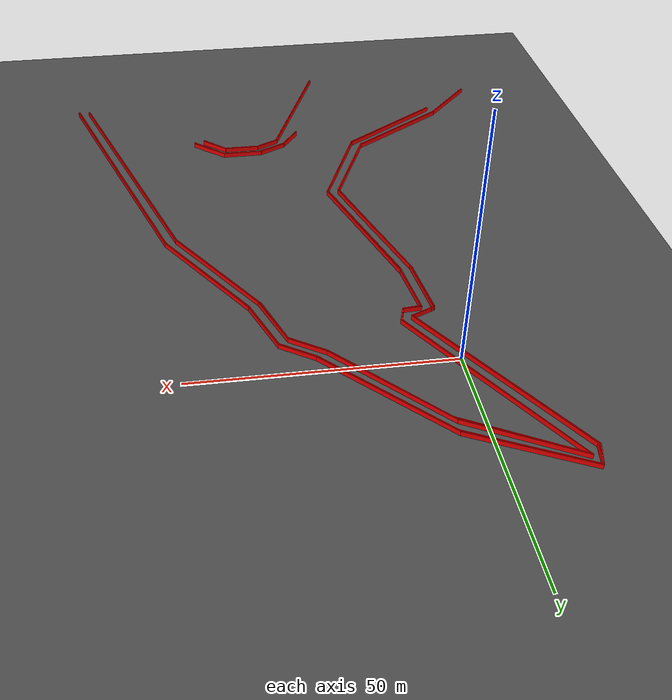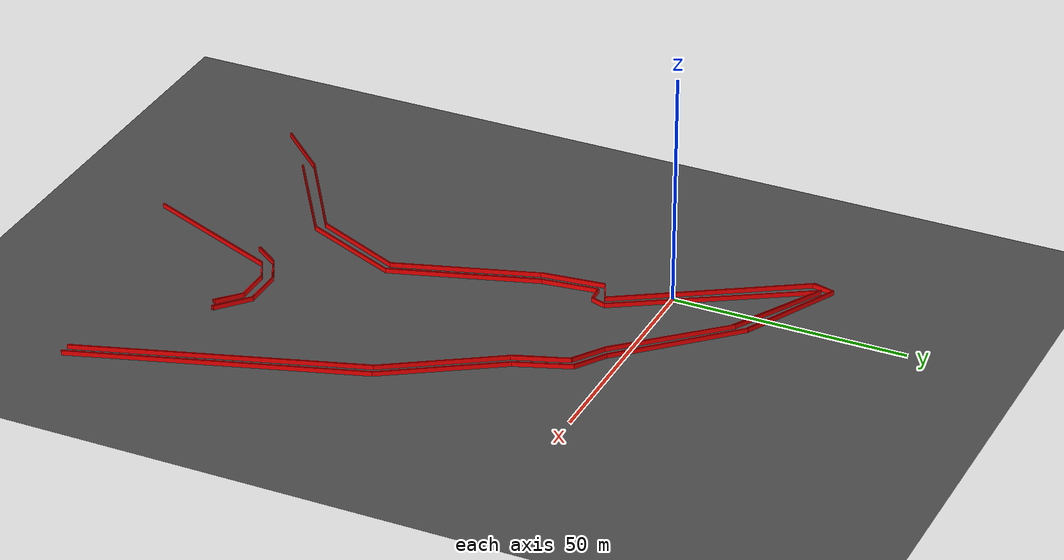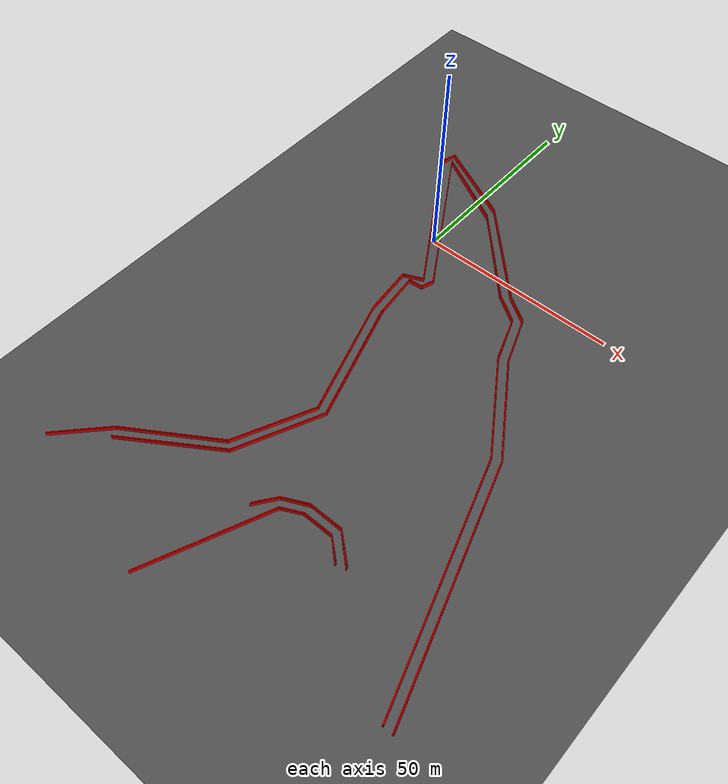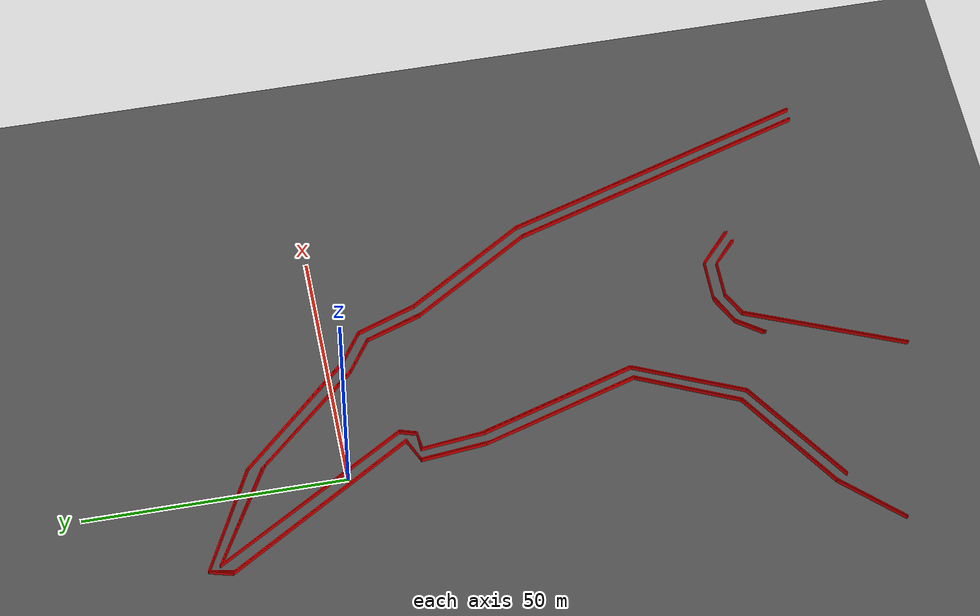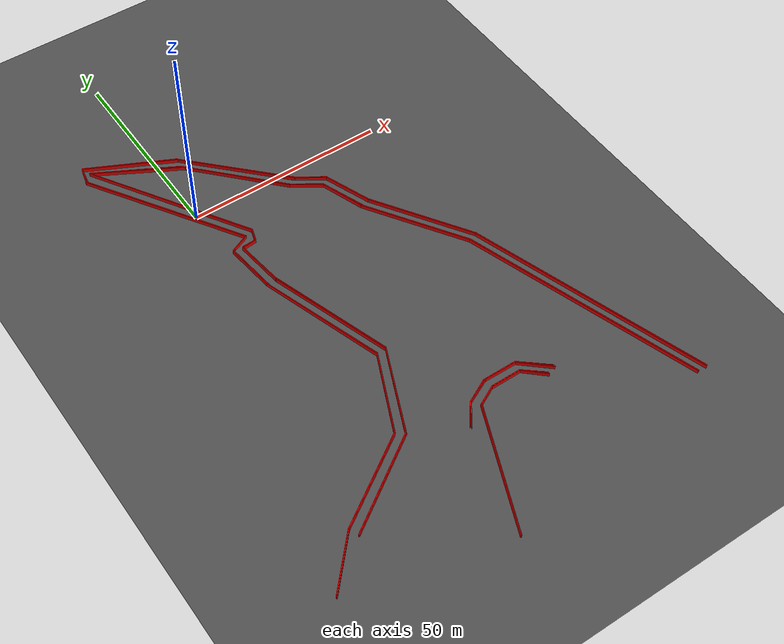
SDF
<sdf version="1.6">
 <world name="track_world">
  <model name="ground_plane">
   <static>true</static>
   <link name="link">
    <collision name="collision">
     <geometry><plane><normal>0 0 1</normal><size>1000 1000</size></plane></geometry>
    </collision>
    <visual name="visual">
     <geometry><plane><normal>0 0 1</normal><size>1000 1000</size></plane></geometry>
     <material><ambient>0.3 0.3 0.3 1</ambient><diffuse>0.3 0.3 0.3 1</diffuse></material>
    </visual>
   </link>
  </model>
  <model name="wall_0">
   <static>true</static>
   <pose>-15.992041944629321 26.23693316114425 0.5 0 0 -1.8352847093441302</pose>
   <link name="link">
    <visual name="visual">
     <geometry><box><size>4.608411176284081 0.15 1.0</size></box></geometry>
     <material><ambient>1 0 0 1</ambient><diffuse>1 0 0 1</diffuse></material>
    </visual>
    <collision name="collision">
     <geometry><box><size>4.608411176284081 0.15 1.0</size></box></geometry>
    </collision>
   </link>
  </model>
  <model name="wall_1">
   <static>true</static>
   <pose>-5.195986944629318 5.942203161144249 0.5 0 0 -1.0080591040338132</pose>
   <link name="link">
    <visual name="visual">
     <geometry><box><size>42.730417360498606 0.15 1.0</size></box></geometry>
     <material><ambient>1 0 0 1</ambient><diffuse>1 0 0 1</diffuse></material>
    </visual>
    <collision name="collision">
     <geometry><box><size>42.730417360498606 0.15 1.0</size></box></geometry>
    </collision>
   </link>
  </model>
  <model name="wall_2">
   <static>true</static>
   <pose>3.839338055370682 -13.19415183885576 0.5 0 0 -2.717923731712275</pose>
   <link name="link">
    <visual name="visual">
     <geometry><box><size>5.184553158855657 0.15 1.0</size></box></geometry>
     <material><ambient>1 0 0 1</ambient><diffuse>1 0 0 1</diffuse></material>
    </visual>
    <collision name="collision">
     <geometry><box><size>5.184553158855657 0.15 1.0</size></box></geometry>
    </collision>
   </link>
  </model>
  <model name="wall_3">
   <static>true</static>
   <pose>2.171278055370678 -20.561416838855763 0.5 0 0 -1.4609462079477658</pose>
   <link name="link">
    <visual name="visual">
     <geometry><box><size>12.679545446777647 0.15 1.0</size></box></geometry>
     <material><ambient>1 0 0 1</ambient><diffuse>1 0 0 1</diffuse></material>
    </visual>
    <collision name="collision">
     <geometry><box><size>12.679545446777647 0.15 1.0</size></box></geometry>
    </collision>
   </link>
  </model>
  <model name="wall_4">
   <static>true</static>
   <pose>7.638808055370681 -42.01452183885576 0.5 0 0 -1.2656494125130227</pose>
   <link name="link">
    <visual name="visual">
     <geometry><box><size>31.770811753057238 0.15 1.0</size></box></geometry>
     <material><ambient>1 0 0 1</ambient><diffuse>1 0 0 1</diffuse></material>
    </visual>
    <collision name="collision">
     <geometry><box><size>31.770811753057238 0.15 1.0</size></box></geometry>
    </collision>
   </link>
  </model>
  <model name="wall_5">
   <static>true</static>
   <pose>8.10215805537068 -66.61840683885575 0.5 0 0 -1.9985312391811392</pose>
   <link name="link">
    <visual name="visual">
     <geometry><box><size>20.776481731960782 0.15 1.0</size></box></geometry>
     <material><ambient>1 0 0 1</ambient><diffuse>1 0 0 1</diffuse></material>
    </visual>
    <collision name="collision">
     <geometry><box><size>20.776481731960782 0.15 1.0</size></box></geometry>
    </collision>
   </link>
  </model>
  <model name="wall_6">
   <static>true</static>
   <pose>-6.632371944629323 -82.83565683885575 0.5 0 0 -2.565998927056457</pose>
   <link name="link">
    <visual name="visual">
     <geometry><box><size>24.855780108355088 0.15 1.0</size></box></geometry>
     <material><ambient>1 0 0 1</ambient><diffuse>1 0 0 1</diffuse></material>
    </visual>
    <collision name="collision">
     <geometry><box><size>24.855780108355088 0.15 1.0</size></box></geometry>
    </collision>
   </link>
  </model>
  <model name="wall_7">
   <static>true</static>
   <pose>-22.154596944629322 -95.06809683885577 0.5 0 0 -2.32112115965912</pose>
   <link name="link">
    <visual name="visual">
     <geometry><box><size>14.949483499224977 0.15 1.0</size></box></geometry>
     <material><ambient>1 0 0 1</ambient><diffuse>1 0 0 1</diffuse></material>
    </visual>
    <collision name="collision">
     <geometry><box><size>14.949483499224977 0.15 1.0</size></box></geometry>
    </collision>
   </link>
  </model>
  <model name="wall_16">
   <static>true</static>
   <pose>17.18381805537068 -95.67045183885577 0.5 0 0 1.1726917666035248</pose>
   <link name="link">
    <visual name="visual">
     <geometry><box><size>32.270722532775736 0.15 1.0</size></box></geometry>
     <material><ambient>1 0 0 1</ambient><diffuse>1 0 0 1</diffuse></material>
    </visual>
    <collision name="collision">
     <geometry><box><size>32.270722532775736 0.15 1.0</size></box></geometry>
    </collision>
   </link>
  </model>
  <model name="wall_17">
   <static>true</static>
   <pose>25.709458055370675 -79.63854183885576 0.5 0 0 0.4717775111807499</pose>
   <link name="link">
    <visual name="visual">
     <geometry><box><size>5.097692384932617 0.15 1.0</size></box></geometry>
     <material><ambient>1 0 0 1</ambient><diffuse>1 0 0 1</diffuse></material>
    </visual>
    <collision name="collision">
     <geometry><box><size>5.097692384932617 0.15 1.0</size></box></geometry>
    </collision>
   </link>
  </model>
  <model name="wall_18">
   <static>true</static>
   <pose>31.82567805537068 -78.48016683885577 0.5 0 0 0.0</pose>
   <link name="link">
    <visual name="visual">
     <geometry><box><size>7.691610000000011 0.15 1.0</size></box></geometry>
     <material><ambient>1 0 0 1</ambient><diffuse>1 0 0 1</diffuse></material>
    </visual>
    <collision name="collision">
     <geometry><box><size>7.691610000000011 0.15 1.0</size></box></geometry>
    </collision>
   </link>
  </model>
  <model name="wall_19">
   <static>true</static>
   <pose>38.034568055370684 -80.65791183885577 0.5 0 0 -0.7446044805295821</pose>
   <link name="link">
    <visual name="visual">
     <geometry><box><size>6.427050335029271 0.15 1.0</size></box></geometry>
     <material><ambient>1 0 0 1</ambient><diffuse>1 0 0 1</diffuse></material>
    </visual>
    <collision name="collision">
     <geometry><box><size>6.427050335029271 0.15 1.0</size></box></geometry>
    </collision>
   </link>
  </model>
  <model name="wall_29">
   <static>true</static>
   <pose>60.69238305537068 -71.06656683885576 0.5 0 0 1.8821009173765633</pose>
   <link name="link">
    <visual name="visual">
     <geometry><box><size>61.71933314311489 0.15 1.0</size></box></geometry>
     <material><ambient>1 0 0 1</ambient><diffuse>1 0 0 1</diffuse></material>
    </visual>
    <collision name="collision">
     <geometry><box><size>61.71933314311489 0.15 1.0</size></box></geometry>
    </collision>
   </link>
  </model>
  <model name="wall_30">
   <static>true</static>
   <pose>43.82644305537068 -30.199096838855766 0.5 0 0 2.143762469683603</pose>
   <link name="link">
    <visual name="visual">
     <geometry><box><size>27.350055541179426 0.15 1.0</size></box></geometry>
     <material><ambient>1 0 0 1</ambient><diffuse>1 0 0 1</diffuse></material>
    </visual>
    <collision name="collision">
     <geometry><box><size>27.350055541179426 0.15 1.0</size></box></geometry>
    </collision>
   </link>
  </model>
  <model name="wall_31">
   <static>true</static>
   <pose>34.281433055370684 -12.962476838855764 0.5 0 0 1.9260271888415783</pose>
   <link name="link">
    <visual name="visual">
     <geometry><box><size>12.256286302090054 0.15 1.0</size></box></geometry>
     <material><ambient>1 0 0 1</ambient><diffuse>1 0 0 1</diffuse></material>
    </visual>
    <collision name="collision">
     <geometry><box><size>12.256286302090054 0.15 1.0</size></box></geometry>
    </collision>
   </link>
  </model>
  <model name="wall_32">
   <static>true</static>
   <pose>28.999243055370684 -5.131861838855755 0.5 0 0 2.556991397469466</pose>
   <link name="link">
    <visual name="visual">
     <geometry><box><size>7.556441586891279 0.15 1.0</size></box></geometry>
     <material><ambient>1 0 0 1</ambient><diffuse>1 0 0 1</diffuse></material>
    </visual>
    <collision name="collision">
     <geometry><box><size>7.556441586891279 0.15 1.0</size></box></geometry>
    </collision>
   </link>
  </model>
  <model name="wall_33">
   <static>true</static>
   <pose>15.515758055370682 7.656598161144245 0.5 0 0 2.3385751682947196</pose>
   <link name="link">
    <visual name="visual">
     <geometry><box><size>29.75414210326018 0.15 1.0</size></box></geometry>
     <material><ambient>1 0 0 1</ambient><diffuse>1 0 0 1</diffuse></material>
    </visual>
    <collision name="collision">
     <geometry><box><size>29.75414210326018 0.15 1.0</size></box></geometry>
    </collision>
   </link>
  </model>
  <model name="wall_34">
   <static>true</static>
   <pose>-5.10331694462932 23.410498161144247 0.5 0 0 2.685178191500146</pose>
   <link name="link">
    <visual name="visual">
     <geometry><box><size>22.918735527260225 0.15 1.0</size></box></geometry>
     <material><ambient>1 0 0 1</ambient><diffuse>1 0 0 1</diffuse></material>
    </visual>
    <collision name="collision">
     <geometry><box><size>22.918735527260225 0.15 1.0</size></box></geometry>
    </collision>
   </link>
  </model>
  <model name="wall_35">
   <static>true</static>
   <pose>-5.010646944629322 23.132488161144252 0.5 0 0 -0.4600698067356663</pose>
   <link name="link">
    <visual name="visual">
     <geometry><box><size>23.166943973327594 0.15 1.0</size></box></geometry>
     <material><ambient>1 0 0 1</ambient><diffuse>1 0 0 1</diffuse></material>
    </visual>
    <collision name="collision">
     <geometry><box><size>23.166943973327594 0.15 1.0</size></box></geometry>
    </collision>
   </link>
  </model>
  <model name="wall_36">
   <static>true</static>
   <pose>15.515758055370675 7.42492316114425 0.5 0 0 -0.8055296715278508</pose>
   <link name="link">
    <visual name="visual">
     <geometry><box><size>29.296767140940656 0.15 1.0</size></box></geometry>
     <material><ambient>1 0 0 1</ambient><diffuse>1 0 0 1</diffuse></material>
    </visual>
    <collision name="collision">
     <geometry><box><size>29.296767140940656 0.15 1.0</size></box></geometry>
    </collision>
   </link>
  </model>
  <model name="wall_37">
   <static>true</static>
   <pose>28.86023805537068 -5.270866838855753 0.5 0 0 -0.5880026035475675</pose>
   <link name="link">
    <visual name="visual">
     <geometry><box><size>7.68490804403671 0.15 1.0</size></box></geometry>
     <material><ambient>1 0 0 1</ambient><diffuse>1 0 0 1</diffuse></material>
    </visual>
    <collision name="collision"><geometry><box><size>7.68490804403671 0.15 1.0</size></box></geometry></collision>
   </link>
  </model>
  <model name="wall_38">
   <static>true</static>
   <pose>34.188763055370686 -13.14781683885576 0.5 0 0 -1.2155654647482148</pose>
   <link name="link">
    <visual name="visual">
     <geometry><box><size>12.256286302090054 0.15 1.0</size></box></geometry>
     <material><ambient>1 0 0 1</ambient><diffuse>1 0 0 1</diffuse></material>
    </visual>
    <collision name="collision">
     <geometry><box><size>12.256286302090054 0.15 1.0</size></box></geometry>
    </collision>
   </link>
  </model>
  <model name="wall_39">
   <static>true</static>
   <pose>43.687438055370684 -30.291766838855764 0.5 0 0 -0.9969973134713415</pose>
   <link name="link">
    <visual name="visual">
     <geometry><box><size>27.14408547793238 0.15 1.0</size></box></geometry>
     <material><ambient>1 0 0 1</ambient><diffuse>1 0 0 1</diffuse></material>
    </visual>
    <collision name="collision">
     <geometry><box><size>27.14408547793238 0.15 1.0</size></box></geometry>
    </collision>
   </link>
  </model>
  <model name="wall_40">
   <static>true</static>
   <pose>60.50704305537068 -71.15923683885576 0.5 0 0 -1.2604089196625452</pose>
   <link name="link">
    <visual name="visual">
     <geometry><box><size>61.89579076994493 0.15 1.0</size></box></geometry>
     <material><ambient>1 0 0 1</ambient><diffuse>1 0 0 1</diffuse></material>
    </visual>
    <collision name="collision">
     <geometry><box><size>61.89579076994493 0.15 1.0</size></box></geometry>
    </collision>
   </link>
  </model>
  <model name="wall_50">
   <static>true</static>
   <pose>37.988233055370685 -80.33356683885576 0.5 0 0 2.4393357220807848</pose>
   <link name="link">
    <visual name="visual">
     <geometry><box><size>6.3124529381215995 0.15 1.0</size></box></geometry>
     <material><ambient>1 0 0 1</ambient><diffuse>1 0 0 1</diffuse></material>
    </visual>
    <collision name="collision">
     <geometry><box><size>6.3124529381215995 0.15 1.0</size></box></geometry>
    </collision>
   </link>
  </model>
  <model name="wall_51">
   <static>true</static>
   <pose>31.825678055370688 -78.29482683885576 0.5 0 0 3.141592653589793</pose>
   <link name="link">
    <visual name="visual">
     <geometry><box><size>7.506270000000001 0.15 1.0</size></box></geometry>
     <material><ambient>1 0 0 1</ambient><diffuse>1 0 0 1</diffuse></material>
    </visual>
    <collision name="collision">
     <geometry><box><size>7.506270000000001 0.15 1.0</size></box></geometry>
    </collision>
   </link>
  </model>
  <model name="wall_52">
   <static>true</static>
   <pose>25.663123055370683 -79.49953683885576 0.5 0 0 -2.677945044588986</pose>
   <link name="link">
    <visual name="visual">
     <geometry><box><size>5.387626906347556 0.15 1.0</size></box></geometry>
     <material><ambient>1 0 0 1</ambient><diffuse>1 0 0 1</diffuse></material>
    </visual>
    <collision name="collision">
     <geometry><box><size>5.387626906347556 0.15 1.0</size></box></geometry>
    </collision>
   </link>
  </model>
  <model name="wall_53">
   <static>true</static>
   <pose>17.044813055370682 -95.53144683885577 0.5 0 0 -1.9673612805543843</pose>
   <link name="link">
    <visual name="visual">
     <geometry><box><size>32.14941211730628 0.15 1.0</size></box></geometry>
     <material><ambient>1 0 0 1</ambient><diffuse>1 0 0 1</diffuse></material>
    </visual>
    <collision name="collision">
     <geometry><box><size>32.14941211730628 0.15 1.0</size></box></geometry>
    </collision>
   </link>
  </model>
  <model name="wall_62">
   <static>true</static>
   <pose>-22.01559194462932 -95.20710183885576 0.5 0 0 0.82016675525353</pose>
   <link name="link">
    <visual name="visual">
     <geometry><box><size>15.080458770534799 0.15 1.0</size></box></geometry>
     <material><ambient>1 0 0 1</ambient><diffuse>1 0 0 1</diffuse></material>
    </visual>
    <collision name="collision">
     <geometry><box><size>15.080458770534799 0.15 1.0</size></box></geometry>
    </collision>
   </link>
  </model>
  <model name="wall_63">
   <static>true</static>
   <pose>-6.493366944629322 -82.97466183885577 0.5 0 0 0.5744899125342395</pose>
   <link name="link">
    <visual name="visual">
     <geometry><box><size>24.727613823596077 0.15 1.0</size></box></geometry>
     <material><ambient>1 0 0 1</ambient><diffuse>1 0 0 1</diffuse></material>
    </visual>
    <collision name="collision">
     <geometry><box><size>24.727613823596077 0.15 1.0</size></box></geometry>
    </collision>
   </link>
  </model>
  <model name="wall_64">
   <static>true</static>
   <pose>8.241163055370677 -66.66474183885576 0.5 0 0 1.144532867143021</pose>
   <link name="link">
    <visual name="visual">
     <geometry><box><size>21.067908491269378 0.15 1.0</size></box></geometry>
     <material><ambient>1 0 0 1</ambient><diffuse>1 0 0 1</diffuse></material>
    </visual>
    <collision name="collision">
     <geometry><box><size>21.067908491269378 0.15 1.0</size></box></geometry>
    </collision>
   </link>
  </model>
  <model name="wall_65">
   <static>true</static>
   <pose>7.870483055370677 -42.38520183885576 0.5 0 0 1.8821009173765635</pose>
   <link name="link">
    <visual name="visual">
     <geometry><box><size>30.859666571557447 0.15 1.0</size></box></geometry>
     <material><ambient>1 0 0 1</ambient><diffuse>1 0 0 1</diffuse></material>
    </visual>
    <collision name="collision">
     <geometry><box><size>30.859666571557447 0.15 1.0</size></box></geometry>
    </collision>
   </link>
  </model>
  <model name="wall_66">
   <static>true</static>
   <pose>2.4029530553706735 -20.932096838855763 0.5 0 0 1.6799497897037745</pose>
   <link name="link">
    <visual name="visual">
     <geometry><box><size>13.610822452401607 0.15 1.0</size></box></geometry>
     <material><ambient>1 0 0 1</ambient><diffuse>1 0 0 1</diffuse></material>
    </visual>
    <collision name="collision">
     <geometry><box><size>13.610822452401607 0.15 1.0</size></box></geometry>
    </collision>
   </link>
  </model>
  <model name="wall_67">
   <static>true</static>
   <pose>4.0246780553706785 -13.14781683885576 0.5 0 0 0.4072558480748493</pose>
   <link name="link">
    <visual name="visual">
     <geometry><box><size>5.147149080461938 0.15 1.0</size></box></geometry>
     <material><ambient>1 0 0 1</ambient><diffuse>1 0 0 1</diffuse></material>
    </visual>
    <collision name="collision">
     <geometry><box><size>5.147149080461938 0.15 1.0</size></box></geometry>
    </collision>
   </link>
  </model>
  <model name="wall_68">
   <static>true</static>
   <pose>-4.91797694462932 5.803198161144252 0.5 0 0 2.133334454021195</pose>
   <link name="link">
    <visual name="visual">
     <geometry><box><size>42.39639840145034 0.15 1.0</size></box></geometry>
     <material><ambient>1 0 0 1</ambient><diffuse>1 0 0 1</diffuse></material>
    </visual>
    <collision name="collision">
     <geometry><box><size>42.39639840145034 0.15 1.0</size></box></geometry>
    </collision>
   </link>
  </model>
  <model name="wall_69">
   <static>true</static>
   <pose>-15.80670194462932 26.005258161144255 0.5 0 0 1.3891474967948836</pose>
   <link name="link">
    <visual name="visual">
     <geometry><box><size>4.616789266340842 0.15 1.0</size></box></geometry>
     <material><ambient>1 0 0 1</ambient><diffuse>1 0 0 1</diffuse></material>
    </visual>
    <collision name="collision">
     <geometry><box><size>4.616789266340842 0.15 1.0</size></box></geometry>
    </collision>
   </link>
  </model>
  <model name="wall_70">
   <static>true</static>
   <pose>-3.064576944629323 7.471258161144235 0.5 0 0 -1.01914134426635</pose>
   <link name="link">
    <visual name="visual">
     <geometry><box><size>43.85093090443691 0.15 1.0</size></box></geometry>
     <material><ambient>1 0 0 1</ambient><diffuse>1 0 0 1</diffuse></material>
    </visual>
    <collision name="collision">
     <geometry><box><size>43.85093090443691 0.15 1.0</size></box></geometry>
    </collision>
   </link>
  </model>
  <model name="wall_71">
   <static>true</static>
   <pose>7.916818055370676 -12.777136838855768 0.5 0 0 -1.8836975546752799</pose>
   <link name="link">
    <visual name="visual">
     <geometry><box><size>3.311575124514009 0.15 1.0</size></box></geometry>
     <material><ambient>1 0 0 1</ambient><diffuse>1 0 0 1</diffuse></material>
    </visual>
    <collision name="collision">
     <geometry><box><size>3.311575124514009 0.15 1.0</size></box></geometry>
    </collision>
   </link>
  </model>
  <model name="wall_72">
   <static>true</static>
   <pose>5.646403055370676 -14.445196838855765 0.5 0 0 -3.0890095919788525</pose>
   <link name="link">
    <visual name="visual">
     <geometry><box><size>3.5263339954122372 0.15 1.0</size></box></geometry>
     <material><ambient>1 0 0 1</ambient><diffuse>1 0 0 1</diffuse></material>
    </visual>
    <collision name="collision">
     <geometry><box><size>3.5263339954122372 0.15 1.0</size></box></geometry>
    </collision>
   </link>
  </model>
  <model name="wall_73">
   <static>true</static>
   <pose>4.580698055370675 -20.74675683885576 0.5 0 0 -1.459320104985118</pose>
   <link name="link">
    <visual name="visual">
     <geometry><box><size>12.495339096275053 0.15 1.0</size></box></geometry>
     <material><ambient>1 0 0 1</ambient><diffuse>1 0 0 1</diffuse></material>
    </visual>
    <collision name="collision">
     <geometry><box><size>12.495339096275053 0.15 1.0</size></box></geometry>
    </collision>
   </link>
  </model>
  <model name="wall_74">
   <static>true</static>
   <pose>10.048228055370679 -42.01452183885576 0.5 0 0 -1.2638869832095208</pose>
   <link name="link">
    <visual name="visual">
     <geometry><box><size>31.59408300556609 0.15 1.0</size></box></geometry>
     <material><ambient>1 0 0 1</ambient><diffuse>1 0 0 1</diffuse></material>
    </visual>
    <collision name="collision">
     <geometry><box><size>31.59408300556609 0.15 1.0</size></box></geometry>
    </collision>
   </link>
  </model>
  <model name="wall_75">
   <static>true</static>
   <pose>10.279903055370681 -67.26709683885576 0.5 0 0 -1.989863826494717</pose>
   <link name="link">
    <visual name="visual">
     <geometry><box><size>22.318660961527236 0.15 1.0</size></box></geometry>
     <material><ambient>1 0 0 1</ambient><diffuse>1 0 0 1</diffuse></material>
    </visual>
    <collision name="collision">
     <geometry><box><size>22.318660961527236 0.15 1.0</size></box></geometry>
    </collision>
   </link>
  </model>
  <model name="wall_76">
   <static>true</static>
   <pose>-5.149651944629319 -84.64272183885575 0.5 0 0 -2.558516118570649</pose>
   <link name="link">
    <visual name="visual">
     <geometry><box><size>26.08788062156449 0.15 1.0</size></box></geometry>
     <material><ambient>1 0 0 1</ambient><diffuse>1 0 0 1</diffuse></material>
    </visual>
    <collision name="collision">
     <geometry><box><size>26.08788062156449 0.15 1.0</size></box></geometry>
    </collision>
   </link>
  </model>
  <model name="wall_87">
   <static>true</static>
   <pose>20.056588055370675 -81.58461183885575 0.5 0 0 0.9472355946358713</pose>
   <link name="link">
    <visual name="visual">
     <geometry><box><size>6.506727555153973 0.15 1.0</size></box></geometry>
     <material><ambient>1 0 0 1</ambient><diffuse>1 0 0 1</diffuse></material>
    </visual>
    <collision name="collision">
     <geometry><box><size>6.506727555153973 0.15 1.0</size></box></geometry>
    </collision>
   </link>
  </model>
  <model name="wall_88">
   <static>true</static>
   <pose>24.968098055370675 -77.50713183885576 0.5 0 0 0.4450162247555417</pose>
   <link name="link">
    <visual name="visual">
     <geometry><box><size>6.673526959217294 0.15 1.0</size></box></geometry>
     <material><ambient>1 0 0 1</ambient><diffuse>1 0 0 1</diffuse></material>
    </visual>
    <collision name="collision">
     <geometry><box><size>6.673526959217294 0.15 1.0</size></box></geometry>
    </collision>
   </link>
  </model>
  <model name="wall_89">
   <static>true</static>
   <pose>32.057353055370676 -76.11708183885577 0.5 0 0 -0.011363147264292252</pose>
   <link name="link">
    <visual name="visual">
     <geometry><box><size>8.155486517093879 0.15 1.0</size></box></geometry>
     <material><ambient>1 0 0 1</ambient><diffuse>1 0 0 1</diffuse></material>
    </visual>
    <collision name="collision">
     <geometry><box><size>8.155486517093879 0.15 1.0</size></box></geometry>
    </collision>
   </link>
  </model>
  <model name="wall_90">
   <static>true</static>
   <pose>39.37828305537068 -79.08252183885577 0.5 0 0 -0.7328151017865052</pose>
   <link name="link">
    <visual name="visual">
     <geometry><box><size>8.727231383096242 0.15 1.0</size></box></geometry>
     <material><ambient>1 0 0 1</ambient><diffuse>1 0 0 1</diffuse></material>
    </visual>
    <collision name="collision">
     <geometry><box><size>8.727231383096242 0.15 1.0</size></box></geometry>
    </collision>
   </link>
  </model>
  <model name="wall_99">
   <static>true</static>
   <pose>58.375633055370685 -71.52991683885577 0.5 0 0 1.8829317928918365</pose>
   <link name="link">
    <visual name="visual">
     <geometry><box><size>60.956858026410785 0.15 1.0</size></box></geometry>
     <material><ambient>1 0 0 1</ambient><diffuse>1 0 0 1</diffuse></material>
    </visual>
    <collision name="collision">
     <geometry><box><size>60.956858026410785 0.15 1.0</size></box></geometry>
    </collision>
   </link>
  </model>
  <model name="wall_100">
   <static>true</static>
   <pose>41.69503305537068 -31.21846683885576 0.5 0 0 2.145440946287136</pose>
   <link name="link">
    <visual name="visual">
     <geometry><box><size>26.938134531737713 0.15 1.0</size></box></geometry>
     <material><ambient>1 0 0 1</ambient><diffuse>1 0 0 1</diffuse></material>
    </visual>
    <collision name="collision">
     <geometry><box><size>26.938134531737713 0.15 1.0</size></box></geometry>
    </collision>
   </link>
  </model>
  <model name="wall_101">
   <static>true</static>
   <pose>32.28902805537068 -14.259856838855761 0.5 0 0 1.9241665095142948</pose>
   <link name="link">
    <visual name="visual">
     <geometry><box><size>12.050307380731002 0.15 1.0</size></box></geometry>
     <material><ambient>1 0 0 1</ambient><diffuse>1 0 0 1</diffuse></material>
    </visual>
    <collision name="collision">
     <geometry><box><size>12.050307380731002 0.15 1.0</size></box></geometry>
    </collision>
   </link>
  </model>
  <model name="wall_102">
   <static>true</static>
   <pose>26.96050305537068 -6.475576838855758 0.5 0 0 2.5602124697848923</pose>
   <link name="link">
    <visual name="visual">
     <geometry><box><size>7.76218435508974 0.15 1.0</size></box></geometry>
     <material><ambient>1 0 0 1</ambient><diffuse>1 0 0 1</diffuse></material>
    </visual>
    <collision name="collision"><geometry><box><size>7.76218435508974 0.15 1.0</size></box></geometry></collision>
   </link>
  </model>
  <model name="wall_103">
   <static>true</static>
   <pose>14.311048055370684 5.617858161144241 0.5 0 0 2.327494238992872</pose>
   <link name="link">
    <visual name="visual">
     <geometry><box><size>27.401815426037007 0.15 1.0</size></box></geometry>
     <material><ambient>1 0 0 1</ambient><diffuse>1 0 0 1</diffuse></material>
    </visual>
    <collision name="collision">
     <geometry><box><size>27.401815426037007 0.15 1.0</size></box></geometry>
    </collision>
   </link>
  </model>
  <model name="wall_104">
   <static>true</static>
   <pose>-4.825306944629318 20.862073161144238 0.5 0 0 2.644249937242971</pose>
   <link name="link">
    <visual name="visual">
     <geometry><box><size>22.143282712244815 0.15 1.0</size></box></geometry>
     <material><ambient>1 0 0 1</ambient><diffuse>1 0 0 1</diffuse></material>
    </visual>
    <collision name="collision">
     <geometry><box><size>22.143282712244815 0.15 1.0</size></box></geometry>
    </collision>
   </link>
  </model>
  <model name="wall_105">
   <static>true</static>
   <pose>-4.408291944629319 20.352388161144248 0.5 0 0 -0.5055174780416881</pose>
   <link name="link">
    <visual name="visual">
     <geometry><box><size>22.772320860101196 0.15 1.0</size></box></geometry>
     <material><ambient>1 0 0 1</ambient><diffuse>1 0 0 1</diffuse></material>
    </visual>
    <collision name="collision">
     <geometry><box><size>22.772320860101196 0.15 1.0</size></box></geometry>
    </collision>
   </link>
  </model>
  <model name="wall_106">
   <static>true</static>
   <pose>14.49638805537068 5.247178161144248 0.5 0 0 -0.8203838822259746</pose>
   <link name="link">
    <visual name="visual">
     <geometry><box><size>26.2270835098415 0.15 1.0</size></box></geometry>
     <material><ambient>1 0 0 1</ambient><diffuse>1 0 0 1</diffuse></material>
    </visual>
    <collision name="collision"><geometry><box><size>26.2270835098415 0.15 1.0</size></box></geometry></collision>
   </link>
  </model>
  <model name="wall_107">
   <static>true</static>
   <pose>26.821498055370675 -6.614581838855756 0.5 0 0 -0.5911571672160443</pose>
   <link name="link">
    <visual name="visual">
     <geometry><box><size>8.147585188078734 0.15 1.0</size></box></geometry>
     <material><ambient>1 0 0 1</ambient><diffuse>1 0 0 1</diffuse></material>
    </visual>
    <collision name="collision">
     <geometry><box><size>8.147585188078734 0.15 1.0</size></box></geometry>
    </collision>
   </link>
  </model>
  <model name="wall_108">
   <static>true</static>
   <pose>32.057353055370676 -14.167186838855756 0.5 0 0 -1.233340257567115</pose>
   <link name="link">
    <visual name="visual">
     <geometry><box><size>11.19582471390116 0.15 1.0</size></box></geometry>
     <material><ambient>1 0 0 1</ambient><diffuse>1 0 0 1</diffuse></material>
    </visual>
    <collision name="collision">
     <geometry><box><size>11.19582471390116 0.15 1.0</size></box></geometry>
    </collision>
   </link>
  </model>
  <model name="wall_109">
   <static>true</static>
   <pose>41.37068805537068 -30.98679183885576 0.5 0 0 -0.9968246078670344</pose>
   <link name="link">
    <visual name="visual">
     <geometry><box><size>27.478178621331516 0.15 1.0</size></box></geometry>
     <material><ambient>1 0 0 1</ambient><diffuse>1 0 0 1</diffuse></material>
    </visual>
    <collision name="collision">
     <geometry><box><size>27.478178621331516 0.15 1.0</size></box></geometry>
    </collision>
   </link>
  </model>
  <model name="wall_110">
   <static>true</static>
   <pose>58.190293055370674 -71.52991683885577 0.5 0 0 -1.2586608606979572</pose>
   <link name="link">
    <visual name="visual">
     <geometry><box><size>60.95685802641078 0.15 1.0</size></box></geometry>
     <material><ambient>1 0 0 1</ambient><diffuse>1 0 0 1</diffuse></material>
    </visual>
    <collision name="collision">
     <geometry><box><size>60.95685802641078 0.15 1.0</size></box></geometry>
    </collision>
   </link>
  </model>
  <model name="wall_119">
   <static>true</static>
   <pose>39.37828305537068 -78.75817683885576 0.5 0 0 2.4329663814621227</pose>
   <link name="link">
    <visual name="visual">
     <geometry><box><size>8.54375184857333 0.15 1.0</size></box></geometry>
     <material><ambient>1 0 0 1</ambient><diffuse>1 0 0 1</diffuse></material>
    </visual>
    <collision name="collision"><geometry><box><size>8.54375184857333 0.15 1.0</size></box></geometry></collision>
   </link>
  </model>
  <model name="wall_120">
   <static>true</static>
   <pose>31.82567805537068 -75.97807683885576 0.5 0 0 3.141592653589793</pose>
   <link name="link">
    <visual name="visual">
     <geometry><box><size>8.618309999999994 0.15 1.0</size></box></geometry>
     <material><ambient>1 0 0 1</ambient><diffuse>1 0 0 1</diffuse></material>
    </visual>
    <collision name="collision">
     <geometry><box><size>8.618309999999994 0.15 1.0</size></box></geometry>
    </collision>
   </link>
  </model>
  <model name="wall_121">
   <static>true</static>
   <pose>24.64375305537068 -77.41446183885576 0.5 0 0 -2.677945044588987</pose>
   <link name="link">
    <visual name="visual">
     <geometry><box><size>6.4237090037220765 0.15 1.0</size></box></geometry>
     <material><ambient>1 0 0 1</ambient><diffuse>1 0 0 1</diffuse></material>
    </visual>
    <collision name="collision">
     <geometry><box><size>6.4237090037220765 0.15 1.0</size></box></geometry>
    </collision>
   </link>
  </model>
  <model name="wall_122">
   <static>true</static>
   <pose>19.963918055370677 -81.30660183885576 0.5 0 0 -2.2051791472709854</pose>
   <link name="link">
    <visual name="visual">
     <geometry><box><size>6.097939499289911 0.15 1.0</size></box></geometry>
     <material><ambient>1 0 0 1</ambient><diffuse>1 0 0 1</diffuse></material>
    </visual>
    <collision name="collision">
     <geometry><box><size>6.097939499289911 0.15 1.0</size></box></geometry>
    </collision>
   </link>
  </model>
  <model name="wall_133">
   <static>true</static>
   <pose>-5.010646944629322 -84.78172683885575 0.5 0 0 0.5820620793691725</pose>
   <link name="link">
    <visual name="visual">
     <geometry><box><size>25.95951198001997 0.15 1.0</size></box></geometry>
     <material><ambient>1 0 0 1</ambient><diffuse>1 0 0 1</diffuse></material>
    </visual>
    <collision name="collision">
     <geometry><box><size>25.95951198001997 0.15 1.0</size></box></geometry>
    </collision>
   </link>
  </model>
  <model name="wall_134">
   <static>true</static>
   <pose>10.418908055370679 -67.26709683885576 0.5 0 0 1.154644962737235</pose>
   <link name="link">
    <visual name="visual">
     <geometry><box><size>22.69507030690365 0.15 1.0</size></box></geometry>
     <material><ambient>1 0 0 1</ambient><diffuse>1 0 0 1</diffuse></material>
    </visual>
    <collision name="collision">
     <geometry><box><size>22.69507030690365 0.15 1.0</size></box></geometry>
    </collision>
   </link>
  </model>
  <model name="wall_135">
   <static>true</static>
   <pose>10.187233055370676 -41.64384183885576 0.5 0 0 1.8769661072824515</pose>
   <link name="link">
    <visual name="visual">
     <geometry><box><size>31.975447450306312 0.15 1.0</size></box></geometry>
     <material><ambient>1 0 0 1</ambient><diffuse>1 0 0 1</diffuse></material>
    </visual>
    <collision name="collision">
     <geometry><box><size>31.975447450306312 0.15 1.0</size></box></geometry>
    </collision>
   </link>
  </model>
  <model name="wall_136">
   <static>true</static>
   <pose>4.6733680553706805 -20.607751838855755 0.5 0 0 1.6902252528132342</pose>
   <link name="link">
    <visual name="visual">
     <geometry><box><size>11.666854891743526 0.15 1.0</size></box></geometry>
     <material><ambient>1 0 0 1</ambient><diffuse>1 0 0 1</diffuse></material>
    </visual>
    <collision name="collision">
     <geometry><box><size>11.666854891743526 0.15 1.0</size></box></geometry>
    </collision>
   </link>
  </model>
  <model name="wall_137">
   <static>true</static>
   <pose>5.785408055370681 -14.630536838855761 0.5 0 0 0.10220671810725195</pose>
   <link name="link">
    <visual name="visual">
     <geometry><box><size>3.6330895005903603 0.15 1.0</size></box></geometry>
     <material><ambient>1 0 0 1</ambient><diffuse>1 0 0 1</diffuse></material>
    </visual>
    <collision name="collision">
     <geometry><box><size>3.6330895005903603 0.15 1.0</size></box></geometry>
    </collision>
   </link>
  </model>
  <model name="wall_138">
   <static>true</static>
   <pose>8.10215805537068 -12.823471838855767 0.5 0 0 1.266285443592781</pose>
   <link name="link">
    <visual name="visual">
     <geometry><box><size>3.399865159002632 0.15 1.0</size></box></geometry>
     <material><ambient>1 0 0 1</ambient><diffuse>1 0 0 1</diffuse></material>
    </visual>
    <collision name="collision">
     <geometry><box><size>3.399865159002632 0.15 1.0</size></box></geometry>
    </collision>
   </link>
  </model>
  <model name="wall_139">
   <static>true</static>
   <pose>-2.8792369446293193 7.332253161144237 0.5 0 0 2.1257920541334836</pose>
   <link name="link">
    <visual name="visual">
     <geometry><box><size>43.614404756520535 0.15 1.0</size></box></geometry>
     <material><ambient>1 0 0 1</ambient><diffuse>1 0 0 1</diffuse></material>
    </visual>
    <collision name="collision">
     <geometry><box><size>43.614404756520535 0.15 1.0</size></box></geometry>
    </collision>
   </link>
  </model>
 </world>
</sdf>
